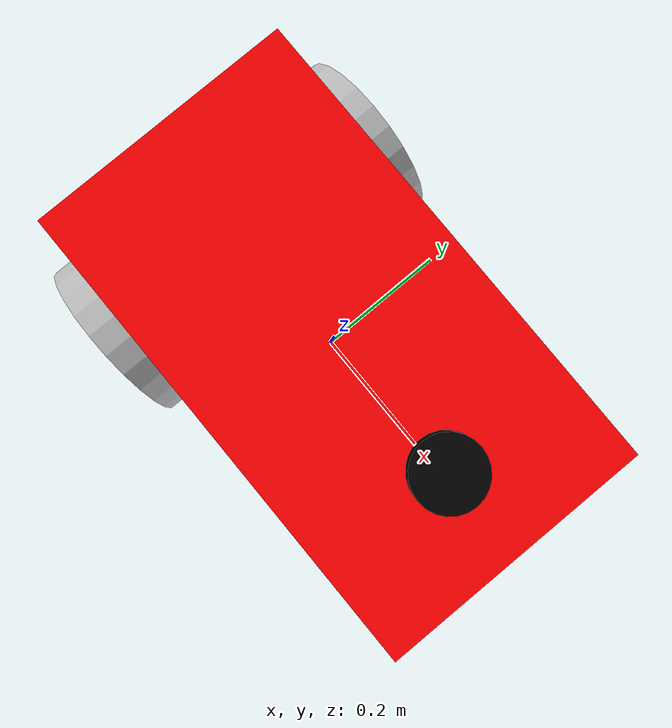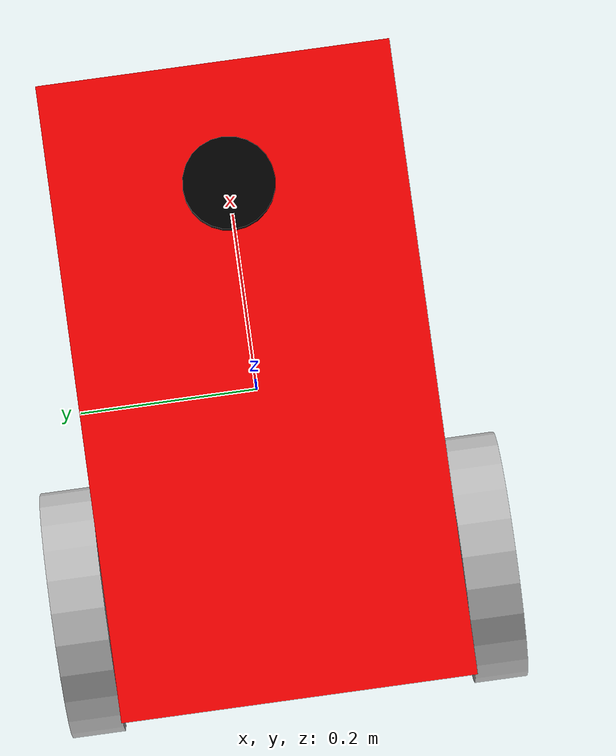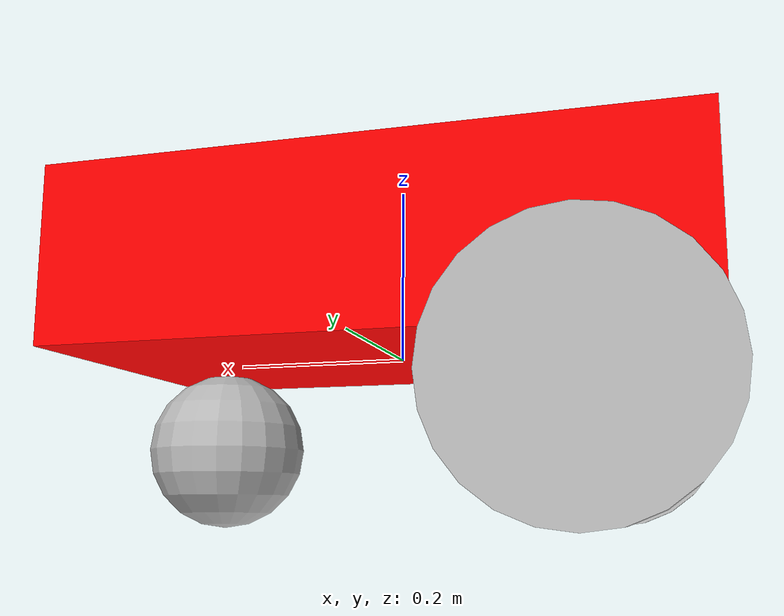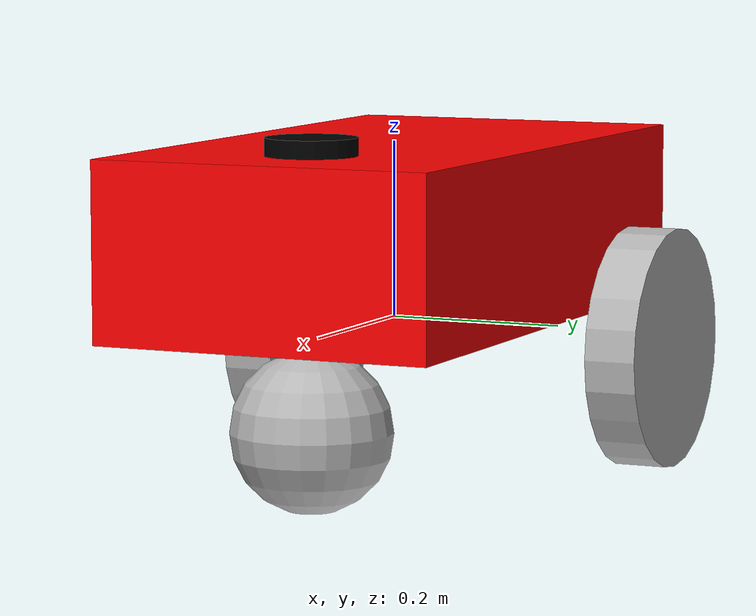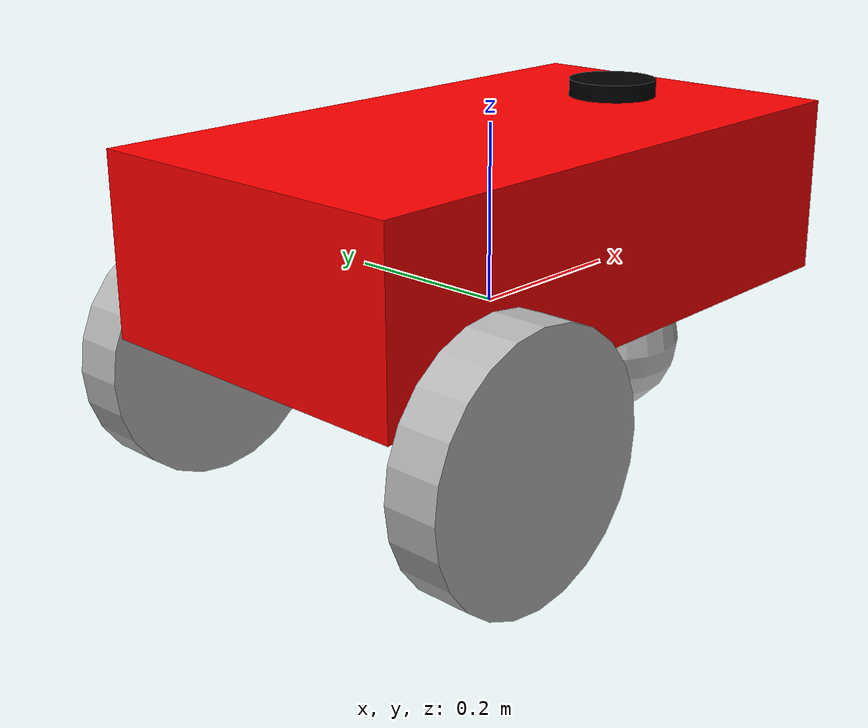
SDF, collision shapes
<?xml version="1.0" ?>
<sdf version="1.5">
  <model name="basic_mobile_bot">
  <static>false</static>

  <!-- ****************** ROBOT BASE FOOTPRINT ***************************  -->
  <pose>0.0 0.0 0.0 0.0 0.0 0.0</pose>
  <link name="base_footprint"/>

  <!-- ********************** ROBOT BASE *********************************  -->
  <link name="base_link">

    <collision name="base_collision">
      <pose>0 0 0.1 0 0 0</pose>
      <geometry>
        <box>
          <size>0.70 0.39 0.20</size>
        </box>
      </geometry>
    </collision>

    <visual name="base_visual">
      <pose>0 0 -0.05 1.5707963267949 0 3.141592654</pose>
      <geometry>
        <mesh>
          <uri>model://basic_mobile_bot_description/meshes/robot_base.stl</uri>
          <scale>1.0 1.0 1.0</scale>
        </mesh>
      </geometry>
      <material>
        <ambient>1.0 0.0 0.0 1.0</ambient>
        <diffuse>1.0 0.0 0.0 1.0</diffuse>
        <specular>0.0 0.0 0.0 1.0</specular>
        <emissive>0.0 0.0 0.0 1.0</emissive>
      </material>
    </visual>
  </link>

  <!-- *********************** IMU SENSOR SETUP **************************  -->
  <link name="imu_link">
    <gravity>true</gravity>
    <sensor name="bmb_imu" type="imu">
      <always_on>true</always_on>
      <update_rate>100</update_rate>
      <visualize>true</visualize>
      <imu>
        <orientation>
          <x>
            <noise type="gaussian">
              <mean>0.0</mean>
              <stddev>2e-3</stddev>
            </noise>
          </x>
          <y>
            <noise type="gaussian">
              <mean>0.0</mean>
              <stddev>2e-3</stddev>
            </noise>
          </y>
          <z>
            <noise type="gaussian">
              <mean>0.0</mean>
              <stddev>2e-3</stddev>
            </noise>
          </z>
        </orientation>
        <angular_velocity>
          <x>
            <noise type="gaussian">
              <mean>0.0</mean>
              <stddev>2e-4</stddev>
            </noise>
          </x>
          <y>
            <noise type="gaussian">
              <mean>0.0</mean>
              <stddev>2e-4</stddev>
            </noise>
          </y>
          <z>
            <noise type="gaussian">
              <mean>0.0</mean>
              <stddev>2e-4</stddev>
            </noise>
          </z>
        </angular_velocity>
        <linear_acceleration>
          <x>
            <noise type="gaussian">
              <mean>0.0</mean>
              <stddev>1.7e-2</stddev>
            </noise>
          </x>
          <y>
            <noise type="gaussian">
              <mean>0.0</mean>
              <stddev>1.7e-2</stddev>
            </noise>
          </y>
          <z>
            <noise type="gaussian">
              <mean>0.0</mean>
              <stddev>1.7e-2</stddev>
            </noise>
          </z>
        </linear_acceleration>
      </imu>
      <plugin name="basic_mobile_bot_imu" filename="libgazebo_ros_imu_sensor.so">
        <initial_orientation_as_reference>false</initial_orientation_as_reference>
        <frame_name>imu_link</frame_name>
        <ros>
          <namespace>/imu</namespace>
          <remapping>~/out:=data</remapping>
        </ros>
      </plugin>
    </sensor>
  </link>

  <!-- *********************** GPS SETUP *********************************  -->
  <link name="gps_link">
    <sensor name="bmb_gps" type="gps">
      <always_on>true</always_on>
      <update_rate>10.0</update_rate>
      <gps>
        <position_sensing>
          <horizontal>
            <noise type="gaussian">
              <mean>0.0</mean>
              <stddev>1e-2</stddev>
            </noise>
          </horizontal>
          <vertical>
            <noise type="gaussian">
              <mean>0.0</mean>
              <stddev>1</stddev>
            </noise>
          </vertical>
        </position_sensing>
      </gps>
      <plugin name="basic_mobile_bot_gps" filename="libgazebo_ros_gps_sensor.so">
        <ros>
          <remapping>~/out:=gps/fix</remapping>
        </ros>
      </plugin>
    </sensor>
  </link>

  <!-- ****************************** LIDAR *****************************    -->
  <link name="lidar_link">
    <inertial>
      <pose>0.215 0 0.13 0 0 0</pose>
      <inertia>
        <ixx>0.001</ixx>
        <ixy>0.000</ixy>
        <ixz>0.000</ixz>
        <iyy>0.001</iyy>
        <iyz>0.000</iyz>
        <izz>0.001</izz>
      </inertia>
      <mass>0.114</mass>
    </inertial>

    <collision name="lidar_collision">
      <pose>0.215 0 0.13 0 0 0</pose>
      <geometry>
        <cylinder>
          <radius>0.0508</radius>
          <length>0.18</length>
        </cylinder>
      </geometry>
    </collision>

    <visual name="lidar_visual">
      <pose>0.215 0 0.13 0 0 0</pose>
      <geometry>
        <cylinder>
          <radius>0.0508</radius>
          <length>0.18</length>
        </cylinder>
      </geometry>
      <material>
        <ambient>0.0 0.0 0.0 1.0</ambient>
        <diffuse>0.0 0.0 0.0 1.0</diffuse>
        <specular>0.0 0.0 0.0 1.0</specular>
        <emissive>0.0 0.0 0.0 1.0</emissive>
      </material>
    </visual>

    <sensor name="lidar" type="ray">
      <pose>0.215 0 0.215 0 0 0</pose>
      <always_on>true</always_on>
      <visualize>true</visualize>
      <update_rate>5</update_rate>
      <ray>
        <scan>
          <horizontal>
            <samples>360</samples>
            <resolution>1.00000</resolution>
            <min_angle>0.000000</min_angle>
            <max_angle>6.280000</max_angle>
          </horizontal>
        </scan>
        <range>
          <min>0.120000</min>
          <max>3.5</max>
          <resolution>0.015000</resolution>
        </range>
        <noise>
          <type>gaussian</type>
          <mean>0.0</mean>
          <stddev>0.01</stddev>
        </noise>
      </ray>
      <plugin name="scan" filename="libgazebo_ros_ray_sensor.so">
        <ros>
          <remapping>~/out:=scan</remapping>
        </ros>
        <output_type>sensor_msgs/LaserScan</output_type>
        <frame_name>lidar_link</frame_name>
      </plugin>
    </sensor>
  </link>

<!-- *********************** ULTRASONIC SENSOR ************************  -->
<link name="ultrasonic_1_link">
  <pose>0.09 -0.139 0.595 0 0 0</pose>
  <sensor name="ultrasonic_1" type="ray">
    <always_on>true</always_on>
    <visualize>false</visualize>
    <update_rate>5</update_rate>
    <ray>
      <scan>
        <horizontal>
          <samples>5</samples>
          <resolution>1.000000</resolution>
          <min_angle>-0.12</min_angle>
          <max_angle>0.12</max_angle>
        </horizontal>
        <vertical>
          <samples>5</samples>
          <resolution>1.000000</resolution>
          <min_angle>-0.01</min_angle>
          <max_angle>0.01</max_angle>
        </vertical>
      </scan>
      <range>
        <min>0.02</min>
        <max>4</max>
        <resolution>0.01</resolution>
      </range>
      <noise>
        <type>gaussian</type>
        <mean>0.0</mean>
        <stddev>0.01</stddev>
      </noise>
    </ray>
    <plugin name="ultrasonic_sensor_1" filename="libgazebo_ros_ray_sensor.so">
      <ros>
        <remapping>~/out:=ultrasonic_sensor_1</remapping>
      </ros>
      <output_type>sensor_msgs/Range</output_type>
      <radiation_type>ultrasound</radiation_type>
      <frame_name>ultrasonic_1_link</frame_name>
    </plugin>
  </sensor>
</link>

  <!-- *********************** DRIVE WHEELS ******************************  -->
  <link name="drivewhl_l_link">
    <pose>-0.221 0.23 -0.05 0 1.570796 1.570796</pose>

    <collision name="drivewhl_l_collision">
      <geometry>
        <cylinder>
          <radius>0.14</radius>
          <length>0.06</length>
        </cylinder>
      </geometry>
    </collision>

    <visual name="drivewhl_l_visual">
      <geometry>
        <cylinder>
          <radius>0.14</radius>
          <length>0.06</length>
        </cylinder>
      </geometry>
    </visual>
  </link>

  <link name="drivewhl_r_link">
    <pose>-0.221 -0.23 -0.05 0 1.570796 1.570796</pose>

    <collision name="drivewhl_r_collision">
      <geometry>
        <cylinder>
          <radius>0.14</radius>
          <length>0.06</length>
        </cylinder>
      </geometry>
    </collision>

    <visual name="drivewhl_r_visual">
      <geometry>
        <cylinder>
          <radius>0.14</radius>
          <length>0.06</length>
        </cylinder>
      </geometry>
    </visual>
  </link>

  <!-- *********************** CASTER WHEEL ******************************  -->
  <link name='front_caster'>
    <pose>0.217 0 -0.1 0 0 0</pose>
    <inertial>
      <inertia>
        <ixx>0.001</ixx>
        <ixy>0.000</ixy>
        <ixz>0.000</ixz>
        <iyy>0.001</iyy>
        <iyz>0.000</iyz>
        <izz>0.001</izz>
      </inertia>
      <mass>70.0</mass>
    </inertial>
    <collision name='collision'>
      <geometry>
        <sphere>
          <radius>0.09</radius>
        </sphere>
      </geometry>
      <surface>
        <friction>
          <ode>
            <mu>0.01</mu>
            <mu2>0.01</mu2>
            <slip1>1.0</slip1>
            <slip2>1.0</slip2>
          </ode>
        </friction>
      </surface>
    </collision>
    <visual name="front_caster_visual">
      <geometry>
        <sphere>
          <radius>0.09</radius>
        </sphere>
      </geometry>
    </visual>
  </link>

  <!-- ************************ JOINTS ***********************************  -->
  <!-- Pose of the joint is the same as the child link frame -->
  <!-- Axis is the axis of rotation relative to the child link frame -->

  <joint name="base_joint" type="fixed">
    <parent>base_footprint</parent>
    <child>base_link</child>
    <pose>0 0 0 0 0 0</pose>
  </joint>

  <joint name="drivewhl_l_joint" type="revolute">
    <parent>base_link</parent>
    <child>drivewhl_l_link</child>
    <pose>0 0 0 0 0 0</pose>
    <axis>
      <xyz>0 0 1</xyz>
    </axis>
  </joint>

  <joint name="drivewhl_r_joint" type="revolute">
    <parent>base_link</parent>
    <child>drivewhl_r_link</child>
    <pose>0 0 0 0 0 0</pose>
    <axis>
      <xyz>0 0 1</xyz>
    </axis>
  </joint>

  <joint name='caster_joint' type='fixed'>
    <parent>base_link</parent>
    <child>front_caster</child>
    <pose>0 0 0 0 0 0</pose>
  </joint>

  <joint name="imu_joint" type="fixed">
    <parent>base_link</parent>
    <child>imu_link</child>
    <pose>0 0 0 0 0 0</pose>
  </joint>

  <joint name="gps_joint" type="fixed">
    <parent>base_link</parent>
    <child>gps_link</child>
    <pose>0 0 0 0 0 0</pose>
  </joint>

  <joint name="lidar_joint" type="fixed">
    <parent>base_link</parent>
    <child>lidar_link</child>
    <pose>0 0 0 0 0 0</pose>
  </joint>

  <joint name="ultrasonic_1_joint" type="fixed">
    <parent>base_link</parent>
    <child>ultrasonic_1_link</child>
    <pose>0 0 0 0 0 0</pose>
  </joint>

 <!-- *********************** WHEEL ODOMETRY ***************************    -->
  <plugin name="basic_mobile_bot_diff_drive" filename="libgazebo_ros_diff_drive.so">

    <update_rate>30</update_rate>

    <!-- wheels -->
    <left_joint>drivewhl_l_joint</left_joint>
    <right_joint>drivewhl_r_joint</right_joint>

    <!-- kinematics -->
    <wheel_separation>0.52</wheel_separation>
    <wheel_diameter>0.28</wheel_diameter>

    <!-- limits -->
    <max_wheel_torque>20</max_wheel_torque>
    <max_wheel_acceleration>1.0</max_wheel_acceleration>

    <!-- Receive velocity commands on this ROS topic -->
    <command_topic>cmd_vel</command_topic>

    <!-- output -->
    <!-- When false, publish no wheel odometry data to a ROS topic -->
    <publish_odom>true</publish_odom>

    <!-- When true, publish coordinate transform from odom to base_footprint -->
    <!-- I usually use the robot_localization package to publish this transform -->
    <publish_odom_tf>false</publish_odom_tf>

    <!-- When true, publish coordinate transform from base_link to the wheels -->
    <!-- The robot_state_publisher package is often used to publish this transform -->
    <publish_wheel_tf>false</publish_wheel_tf>

    <odometry_topic>odom</odometry_topic>
    <odometry_frame>odom</odometry_frame>
    <robot_base_frame>base_footprint</robot_base_frame>

    <!-- Odometry source, 0 for ENCODER, 1 for WORLD, defaults to WORLD -->
    <odometry_source>0</odometry_source>

    <!-- Change the ROS topic we will publish the odometry data to -->
    <ros>
      <remapping>odom:=wheel/odometry</remapping>
    </ros>

  </plugin>

 <!-- *********************** JOINT STATE PUBLISHER *********************   -->

  <plugin name="basic_mobile_bot_joint_state" filename="libgazebo_ros_joint_state_publisher.so">
    <ros>
      <remapping>~/out:=joint_states</remapping>
    </ros>
    <update_rate>30</update_rate>
    <joint_name>drivewhl_l_joint</joint_name>
    <joint_name>drivewhl_r_joint</joint_name>
  </plugin>

  </model>
</sdf>
